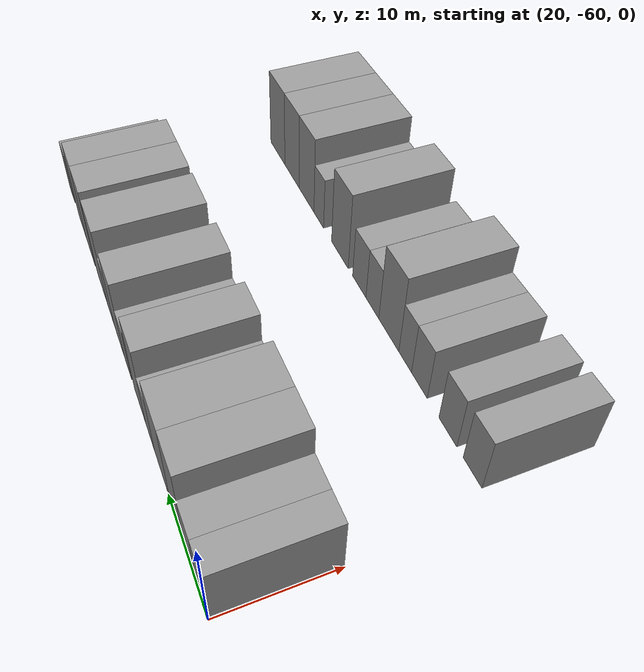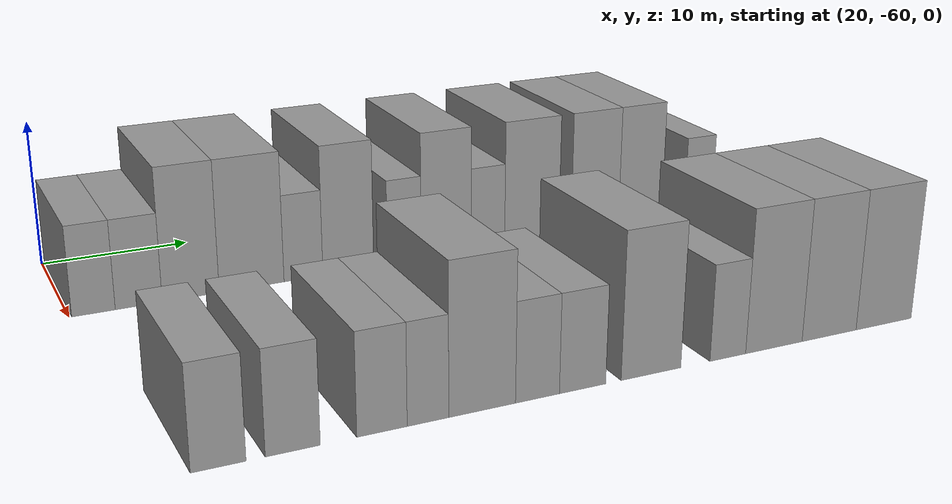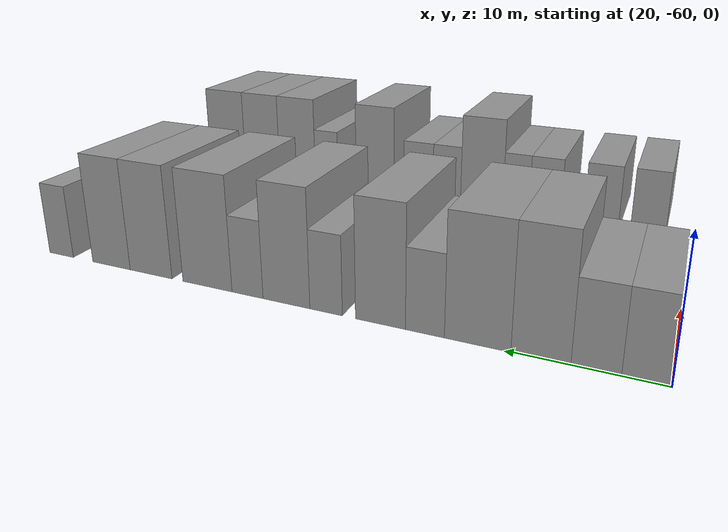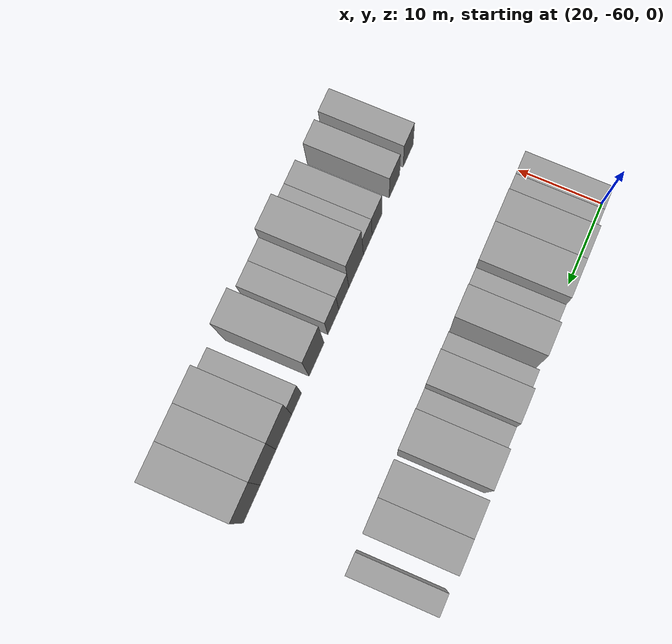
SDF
<sdf version="1.6">
 <world name="default">
  <model name="building_37">
   <static>1</static>
   <pose>25.0000 -58.4791 0 0.000000 0.000000 0.000000</pose>
   <link name="link">
    <pose>0 0 3.00 0 0 0</pose>
    <collision name="collision"><geometry><box><size>10.0000 2.7060 6.0000</size></box></geometry></collision>
    <visual name="visual">
     <cast_shadows>0</cast_shadows>
     <geometry><box><size>10.0000 2.7060 6.0000</size></box></geometry>
     <material>
      <script>
       <uri>model://grey_wall/materials/scripts</uri>
       <uri>model://grey_wall/materials/textures</uri>
       <name>vrc/grey_wall</name>
      </script>
     </material>
    </visual>
   </link>
  </model>
  <model name="building_38">
   <static>1</static>
   <pose>25.0000 -55.6310 0 0.000000 0.000000 0.000000</pose>
   <link name="link">
    <pose>0 0 3.00 0 0 0</pose>
    <collision name="collision"><geometry><box><size>10.0000 2.9903 6.0000</size></box></geometry></collision>
    <visual name="visual">
     <cast_shadows>0</cast_shadows>
     <geometry><box><size>10.0000 2.9903 6.0000</size></box></geometry>
     <material>
      <script>
       <uri>model://grey_wall/materials/scripts</uri>
       <uri>model://grey_wall/materials/textures</uri>
       <name>vrc/grey_wall</name>
      </script>
     </material>
    </visual>
   </link>
  </model>
  <model name="building_39">
   <static>1</static>
   <pose>25.0000 -52.2686 0 0.000000 0.000000 0.000000</pose>
   <link name="link">
    <pose>0 0 4.50 0 0 0</pose>
    <collision name="collision"><geometry><box><size>10.0000 3.7345 9.0000</size></box></geometry></collision>
    <visual name="visual">
     <cast_shadows>0</cast_shadows>
     <geometry><box><size>10.0000 3.7345 9.0000</size></box></geometry>
     <material>
      <script>
       <uri>model://grey_wall/materials/scripts</uri>
       <uri>model://grey_wall/materials/textures</uri>
       <name>vrc/grey_wall</name>
      </script>
     </material>
    </visual>
   </link>
  </model>
  <model name="building_40">
   <static>1</static>
   <pose>25.0000 -48.2032 0 0.000000 0.000000 0.000000</pose>
   <link name="link">
    <pose>0 0 4.50 0 0 0</pose>
    <collision name="collision"><geometry><box><size>10.0000 4.3964 9.0000</size></box></geometry></collision>
    <visual name="visual">
     <cast_shadows>0</cast_shadows>
     <geometry><box><size>10.0000 4.3964 9.0000</size></box></geometry>
     <material>
      <script>
       <uri>model://grey_wall/materials/scripts</uri>
       <uri>model://grey_wall/materials/textures</uri>
       <name>vrc/grey_wall</name>
      </script>
     </material>
    </visual>
   </link>
  </model>
  <model name="building_41">
   <static>1</static>
   <pose>25.0000 -44.6476 0 0.000000 0.000000 0.000000</pose>
   <link name="link">
    <pose>0 0 3.00 0 0 0</pose>
    <collision name="collision"><geometry><box><size>10.0000 2.7148 6.0000</size></box></geometry></collision>
    <visual name="visual">
     <cast_shadows>0</cast_shadows>
     <geometry><box><size>10.0000 2.7148 6.0000</size></box></geometry>
     <material>
      <script>
       <uri>model://grey_wall/materials/scripts</uri>
       <uri>model://grey_wall/materials/textures</uri>
       <name>vrc/grey_wall</name>
      </script>
     </material>
    </visual>
   </link>
  </model>
  <model name="building_42">
   <static>1</static>
   <pose>25.0000 -41.4667 0 0.000000 0.000000 0.000000</pose>
   <link name="link">
    <pose>0 0 4.50 0 0 0</pose>
    <collision name="collision"><geometry><box><size>10.0000 3.6469 9.0000</size></box></geometry></collision>
    <visual name="visual">
     <cast_shadows>0</cast_shadows>
     <geometry><box><size>10.0000 3.6469 9.0000</size></box></geometry>
     <material>
      <script>
       <uri>model://grey_wall/materials/scripts</uri>
       <uri>model://grey_wall/materials/textures</uri>
       <name>vrc/grey_wall</name>
      </script>
     </material>
    </visual>
   </link>
  </model>
  <model name="building_43">
   <static>1</static>
   <pose>25.0000 -37.3886 0 0.000000 0.000000 0.000000</pose>
   <link name="link">
    <pose>0 0 3.00 0 0 0</pose>
    <collision name="collision"><geometry><box><size>10.0000 2.5093 6.0000</size></box></geometry></collision>
    <visual name="visual">
     <cast_shadows>0</cast_shadows>
     <geometry><box><size>10.0000 2.5093 6.0000</size></box></geometry>
     <material>
      <script>
       <uri>model://grey_wall/materials/scripts</uri>
       <uri>model://grey_wall/materials/textures</uri>
       <name>vrc/grey_wall</name>
      </script>
     </material>
    </visual>
   </link>
  </model>
  <model name="building_44">
   <static>1</static>
   <pose>25.0000 -34.2427 0 0.000000 0.000000 0.000000</pose>
   <link name="link">
    <pose>0 0 4.50 0 0 0</pose>
    <collision name="collision"><geometry><box><size>10.0000 3.7825 9.0000</size></box></geometry></collision>
    <visual name="visual">
     <cast_shadows>0</cast_shadows>
     <geometry><box><size>10.0000 3.7825 9.0000</size></box></geometry>
     <material>
      <script>
       <uri>model://grey_wall/materials/scripts</uri>
       <uri>model://grey_wall/materials/textures</uri>
       <name>vrc/grey_wall</name>
      </script>
     </material>
    </visual>
   </link>
  </model>
  <model name="building_45">
   <static>1</static>
   <pose>25.0000 -31.0395 0 0.000000 0.000000 0.000000</pose>
   <link name="link">
    <pose>0 0 3.00 0 0 0</pose>
    <collision name="collision"><geometry><box><size>10.0000 2.6238 6.0000</size></box></geometry></collision>
    <visual name="visual">
     <cast_shadows>0</cast_shadows>
     <geometry><box><size>10.0000 2.6238 6.0000</size></box></geometry>
     <material>
      <script>
       <uri>model://grey_wall/materials/scripts</uri>
       <uri>model://grey_wall/materials/textures</uri>
       <name>vrc/grey_wall</name>
      </script>
     </material>
    </visual>
   </link>
  </model>
  <model name="building_46">
   <static>1</static>
   <pose>25.0000 -27.5578 0 0.000000 0.000000 0.000000</pose>
   <link name="link">
    <pose>0 0 4.50 0 0 0</pose>
    <collision name="collision"><geometry><box><size>10.0000 4.3396 9.0000</size></box></geometry></collision>
    <visual name="visual">
     <cast_shadows>0</cast_shadows>
     <geometry><box><size>10.0000 4.3396 9.0000</size></box></geometry>
     <material>
      <script>
       <uri>model://grey_wall/materials/scripts</uri>
       <uri>model://grey_wall/materials/textures</uri>
       <name>vrc/grey_wall</name>
      </script>
     </material>
    </visual>
   </link>
  </model>
  <model name="building_47">
   <static>1</static>
   <pose>25.0000 -22.4125 0 0.000000 0.000000 0.000000</pose>
   <link name="link">
    <pose>0 0 4.50 0 0 0</pose>
    <collision name="collision"><geometry><box><size>10.0000 3.9510 9.0000</size></box></geometry></collision>
    <visual name="visual">
     <cast_shadows>0</cast_shadows>
     <geometry><box><size>10.0000 3.9510 9.0000</size></box></geometry>
     <material>
      <script>
       <uri>model://grey_wall/materials/scripts</uri>
       <uri>model://grey_wall/materials/textures</uri>
       <name>vrc/grey_wall</name>
      </script>
     </material>
    </visual>
   </link>
  </model>
  <model name="building_48">
   <static>1</static>
   <pose>25.0000 -18.5852 0 0.000000 0.000000 0.000000</pose>
   <link name="link">
    <pose>0 0 4.50 0 0 0</pose>
    <collision name="collision"><geometry><box><size>10.0000 3.7035 9.0000</size></box></geometry></collision>
    <visual name="visual">
     <cast_shadows>0</cast_shadows>
     <geometry><box><size>10.0000 3.7035 9.0000</size></box></geometry>
     <material>
      <script>
       <uri>model://grey_wall/materials/scripts</uri>
       <uri>model://grey_wall/materials/textures</uri>
       <name>vrc/grey_wall</name>
      </script>
     </material>
    </visual>
   </link>
  </model>
  <model name="building_49">
   <static>1</static>
   <pose>25.0000 -13.5009 0 0.000000 0.000000 0.000000</pose>
   <link name="link">
    <pose>0 0 3.00 0 0 0</pose>
    <collision name="collision"><geometry><box><size>10.0000 2.4650 6.0000</size></box></geometry></collision>
    <visual name="visual">
     <cast_shadows>0</cast_shadows>
     <geometry><box><size>10.0000 2.4650 6.0000</size></box></geometry>
     <material>
      <script>
       <uri>model://grey_wall/materials/scripts</uri>
       <uri>model://grey_wall/materials/textures</uri>
       <name>vrc/grey_wall</name>
      </script>
     </material>
    </visual>
   </link>
  </model>
  <model name="building_131">
   <static>1</static>
   <pose>47.0000 -56.6797 0 0.000000 0.000000 0.000000</pose>
   <link name="link">
    <pose>0 0 3.00 0 0 0</pose>
    <collision name="collision"><geometry><box><size>10.0000 2.8626 6.0000</size></box></geometry></collision>
    <visual name="visual">
     <cast_shadows>0</cast_shadows>
     <geometry><box><size>10.0000 2.8626 6.0000</size></box></geometry>
     <material>
      <script>
       <uri>model://grey_wall/materials/scripts</uri>
       <uri>model://grey_wall/materials/textures</uri>
       <name>vrc/grey_wall</name>
      </script>
     </material>
    </visual>
   </link>
  </model>
  <model name="building_132">
   <static>1</static>
   <pose>47.0000 -52.7775 0 0.000000 0.000000 0.000000</pose>
   <link name="link">
    <pose>0 0 3.00 0 0 0</pose>
    <collision name="collision"><geometry><box><size>10.0000 2.9418 6.0000</size></box></geometry></collision>
    <visual name="visual">
     <cast_shadows>0</cast_shadows>
     <geometry><box><size>10.0000 2.9418 6.0000</size></box></geometry>
     <material>
      <script>
       <uri>model://grey_wall/materials/scripts</uri>
       <uri>model://grey_wall/materials/textures</uri>
       <name>vrc/grey_wall</name>
      </script>
     </material>
    </visual>
   </link>
  </model>
  <model name="building_133">
   <static>1</static>
   <pose>47.0000 -47.8874 0 0.000000 0.000000 0.000000</pose>
   <link name="link">
    <pose>0 0 3.00 0 0 0</pose>
    <collision name="collision"><geometry><box><size>10.0000 2.8385 6.0000</size></box></geometry></collision>
    <visual name="visual">
     <cast_shadows>0</cast_shadows>
     <geometry><box><size>10.0000 2.8385 6.0000</size></box></geometry>
     <material>
      <script>
       <uri>model://grey_wall/materials/scripts</uri>
       <uri>model://grey_wall/materials/textures</uri>
       <name>vrc/grey_wall</name>
      </script>
     </material>
    </visual>
   </link>
  </model>
  <model name="building_134">
   <static>1</static>
   <pose>47.0000 -45.2676 0 0.000000 0.000000 0.000000</pose>
   <link name="link">
    <pose>0 0 3.00 0 0 0</pose>
    <collision name="collision"><geometry><box><size>10.0000 2.4011 6.0000</size></box></geometry></collision>
    <visual name="visual">
     <cast_shadows>0</cast_shadows>
     <geometry><box><size>10.0000 2.4011 6.0000</size></box></geometry>
     <material>
      <script>
       <uri>model://grey_wall/materials/scripts</uri>
       <uri>model://grey_wall/materials/textures</uri>
       <name>vrc/grey_wall</name>
      </script>
     </material>
    </visual>
   </link>
  </model>
  <model name="building_135">
   <static>1</static>
   <pose>47.0000 -42.0688 0 0.000000 0.000000 0.000000</pose>
   <link name="link">
    <pose>0 0 4.50 0 0 0</pose>
    <collision name="collision"><geometry><box><size>10.0000 3.9963 9.0000</size></box></geometry></collision>
    <visual name="visual">
     <cast_shadows>0</cast_shadows>
     <geometry><box><size>10.0000 3.9963 9.0000</size></box></geometry>
     <material>
      <script>
       <uri>model://grey_wall/materials/scripts</uri>
       <uri>model://grey_wall/materials/textures</uri>
       <name>vrc/grey_wall</name>
      </script>
     </material>
    </visual>
   </link>
  </model>
  <model name="building_136">
   <static>1</static>
   <pose>47.0000 -38.7112 0 0.000000 0.000000 0.000000</pose>
   <link name="link">
    <pose>0 0 3.00 0 0 0</pose>
    <collision name="collision"><geometry><box><size>10.0000 2.7189 6.0000</size></box></geometry></collision>
    <visual name="visual">
     <cast_shadows>0</cast_shadows>
     <geometry><box><size>10.0000 2.7189 6.0000</size></box></geometry>
     <material>
      <script>
       <uri>model://grey_wall/materials/scripts</uri>
       <uri>model://grey_wall/materials/textures</uri>
       <name>vrc/grey_wall</name>
      </script>
     </material>
    </visual>
   </link>
  </model>
  <model name="building_137">
   <static>1</static>
   <pose>47.0000 -35.8767 0 0.000000 0.000000 0.000000</pose>
   <link name="link">
    <pose>0 0 3.00 0 0 0</pose>
    <collision name="collision"><geometry><box><size>10.0000 2.9502 6.0000</size></box></geometry></collision>
    <visual name="visual">
     <cast_shadows>0</cast_shadows>
     <geometry><box><size>10.0000 2.9502 6.0000</size></box></geometry>
     <material>
      <script>
       <uri>model://grey_wall/materials/scripts</uri>
       <uri>model://grey_wall/materials/textures</uri>
       <name>vrc/grey_wall</name>
      </script>
     </material>
    </visual>
   </link>
  </model>
  <model name="building_138">
   <static>1</static>
   <pose>47.0000 -31.4152 0 0.000000 0.000000 0.000000</pose>
   <link name="link">
    <pose>0 0 4.50 0 0 0</pose>
    <collision name="collision"><geometry><box><size>10.0000 3.9727 9.0000</size></box></geometry></collision>
    <visual name="visual">
     <cast_shadows>0</cast_shadows>
     <geometry><box><size>10.0000 3.9727 9.0000</size></box></geometry>
     <material>
      <script>
       <uri>model://grey_wall/materials/scripts</uri>
       <uri>model://grey_wall/materials/textures</uri>
       <name>vrc/grey_wall</name>
      </script>
     </material>
    </visual>
   </link>
  </model>
  <model name="building_139">
   <static>1</static>
   <pose>47.0000 -26.1804 0 0.000000 0.000000 0.000000</pose>
   <link name="link">
    <pose>0 0 3.00 0 0 0</pose>
    <collision name="collision"><geometry><box><size>10.0000 2.4970 6.0000</size></box></geometry></collision>
    <visual name="visual">
     <cast_shadows>0</cast_shadows>
     <geometry><box><size>10.0000 2.4970 6.0000</size></box></geometry>
     <material>
      <script>
       <uri>model://grey_wall/materials/scripts</uri>
       <uri>model://grey_wall/materials/textures</uri>
       <name>vrc/grey_wall</name>
      </script>
     </material>
    </visual>
   </link>
  </model>
  <model name="building_140">
   <static>1</static>
   <pose>47.0000 -22.8952 0 0.000000 0.000000 0.000000</pose>
   <link name="link">
    <pose>0 0 4.50 0 0 0</pose>
    <collision name="collision"><geometry><box><size>10.0000 4.0733 9.0000</size></box></geometry></collision>
    <visual name="visual">
     <cast_shadows>0</cast_shadows>
     <geometry><box><size>10.0000 4.0733 9.0000</size></box></geometry>
     <material>
      <script>
       <uri>model://grey_wall/materials/scripts</uri>
       <uri>model://grey_wall/materials/textures</uri>
       <name>vrc/grey_wall</name>
      </script>
     </material>
    </visual>
   </link>
  </model>
  <model name="building_141">
   <static>1</static>
   <pose>47.0000 -18.8339 0 0.000000 0.000000 0.000000</pose>
   <link name="link">
    <pose>0 0 4.50 0 0 0</pose>
    <collision name="collision"><geometry><box><size>10.0000 4.0493 9.0000</size></box></geometry></collision>
    <visual name="visual">
     <cast_shadows>0</cast_shadows>
     <geometry><box><size>10.0000 4.0493 9.0000</size></box></geometry>
     <material>
      <script>
       <uri>model://grey_wall/materials/scripts</uri>
       <uri>model://grey_wall/materials/textures</uri>
       <name>vrc/grey_wall</name>
      </script>
     </material>
    </visual>
   </link>
  </model>
  <model name="building_142">
   <static>1</static>
   <pose>47.0000 -14.6690 0 0.000000 0.000000 0.000000</pose>
   <link name="link">
    <pose>0 0 4.50 0 0 0</pose>
    <collision name="collision"><geometry><box><size>10.0000 4.2805 9.0000</size></box></geometry></collision>
    <visual name="visual">
     <cast_shadows>0</cast_shadows>
     <geometry><box><size>10.0000 4.2805 9.0000</size></box></geometry>
     <material>
      <script>
       <uri>model://grey_wall/materials/scripts</uri>
       <uri>model://grey_wall/materials/textures</uri>
       <name>vrc/grey_wall</name>
      </script>
     </material>
    </visual>
   </link>
  </model>
 </world>
</sdf>
